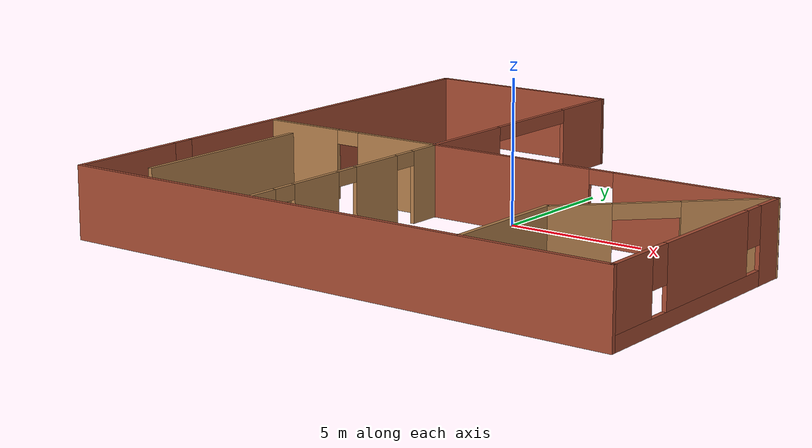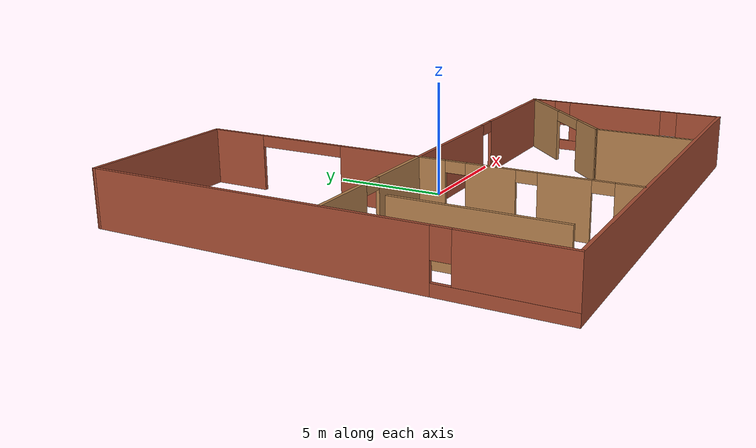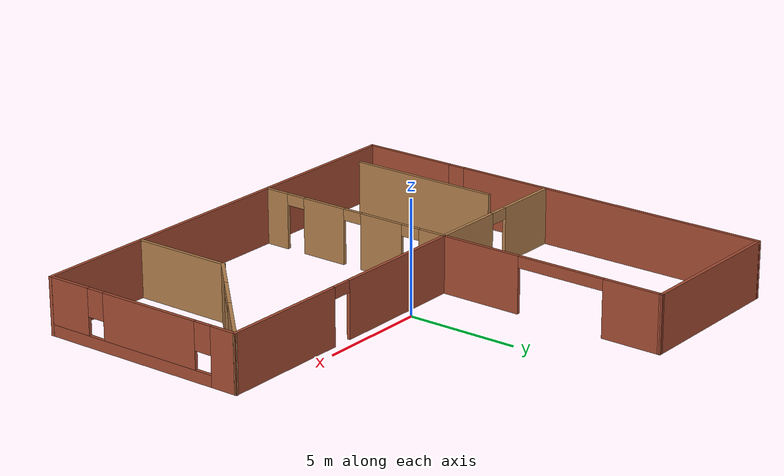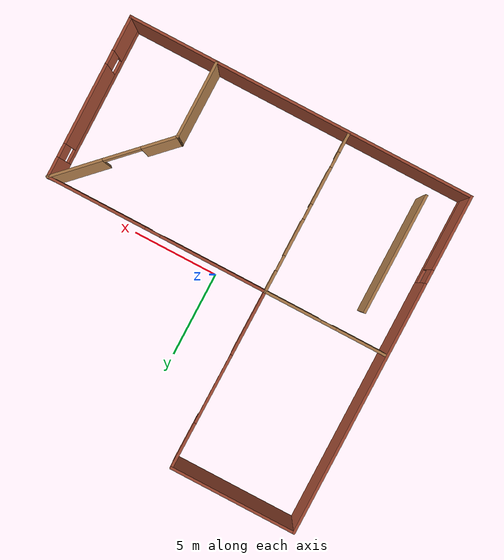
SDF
<?xml version='1.0'?>
<sdf version='1.7'>
  <model name='test_room'>
    <pose>0.008396 -0.010842 0 0 -0 0</pose>
    <link name='Wall_1'>
      <pose>-10.0852 -7e-06 0 0 -0 -1.5708</pose>
      <visual name='Wall_1_Visual_0'>
        <pose>-2.60084 0 1.25 0 -0 0</pose>
        <geometry>
          <box>
            <size>14.8266 0.15 2.5</size>
          </box>
        </geometry>
        <material>
          <script>
            <uri>file://media/materials/scripts/gazebo.material</uri>
            <name>Gazebo/Bricks</name>
          </script>
          <ambient>1 1 1 1</ambient>
        </material>
        <meta>
          <layer>0</layer>
        </meta>
      </visual>
      <collision name='Wall_1_Collision_0'>
        <geometry>
          <box>
            <size>14.8266 0.15 2.5</size>
          </box>
        </geometry>
        <pose>-2.60084 0 1.25 0 -0 0</pose>
      </collision>
      <visual name='Wall_1_Visual_1'>
        <pose>7.41331 0 0.25 0 -0 0</pose>
        <geometry>
          <box>
            <size>5.20167 0.15 0.5</size>
          </box>
        </geometry>
        <material>
          <script>
            <uri>file://media/materials/scripts/gazebo.material</uri>
            <name>Gazebo/Bricks</name>
          </script>
          <ambient>1 1 1 1</ambient>
        </material>
        <meta>
          <layer>0</layer>
        </meta>
      </visual>
      <collision name='Wall_1_Collision_1'>
        <geometry>
          <box>
            <size>5.20167 0.15 0.5</size>
          </box>
        </geometry>
        <pose>7.41331 0 0.25 0 -0 0</pose>
      </collision>
      <visual name='Wall_1_Visual_2'>
        <pose>7.81331 0 1.5 0 -0 0</pose>
        <geometry>
          <box>
            <size>4.40167 0.15 2</size>
          </box>
        </geometry>
        <material>
          <script>
            <uri>file://media/materials/scripts/gazebo.material</uri>
            <name>Gazebo/Bricks</name>
          </script>
          <ambient>1 1 1 1</ambient>
        </material>
        <meta>
          <layer>0</layer>
        </meta>
      </visual>
      <collision name='Wall_1_Collision_2'>
        <geometry>
          <box>
            <size>4.40167 0.15 2</size>
          </box>
        </geometry>
        <pose>7.81331 0 1.5 0 -0 0</pose>
      </collision>
      <visual name='Wall_1_Visual_3'>
        <pose>5.21248 0 1.9 0 -0 0</pose>
        <geometry>
          <box>
            <size>0.8 0.15 1.2</size>
          </box>
        </geometry>
        <material>
          <script>
            <uri>file://media/materials/scripts/gazebo.material</uri>
            <name>Gazebo/Bricks</name>
          </script>
          <ambient>1 1 1 1</ambient>
        </material>
        <meta>
          <layer>0</layer>
        </meta>
      </visual>
      <collision name='Wall_1_Collision_3'>
        <geometry>
          <box>
            <size>0.8 0.15 1.2</size>
          </box>
        </geometry>
        <pose>5.21248 0 1.9 0 -0 0</pose>
      </collision>
    </link>
    <link name='Wall_10'>
      <pose>10.0526 -5.21899 0 0 -0 -1.56433</pose>
      <visual name='Wall_10_Visual_0'>
        <pose>-4.1681 0 1.25 0 -0 0</pose>
        <geometry>
          <box>
            <size>1.23337 0.15 2.5</size>
          </box>
        </geometry>
        <material>
          <script>
            <uri>file://media/materials/scripts/gazebo.material</uri>
            <name>Gazebo/Bricks</name>
          </script>
          <ambient>1 1 1 1</ambient>
        </material>
        <meta>
          <layer>0</layer>
        </meta>
      </visual>
      <collision name='Wall_10_Collision_0'>
        <geometry>
          <box>
            <size>1.23337 0.15 2.5</size>
          </box>
        </geometry>
        <pose>-4.1681 0 1.25 0 -0 0</pose>
      </collision>
      <visual name='Wall_10_Visual_1'>
        <pose>0.616686 0 0.25 0 -0 0</pose>
        <geometry>
          <box>
            <size>8.3362 0.15 0.5</size>
          </box>
        </geometry>
        <material>
          <script>
            <uri>file://media/materials/scripts/gazebo.material</uri>
            <name>Gazebo/Bricks</name>
          </script>
          <ambient>1 1 1 1</ambient>
        </material>
        <meta>
          <layer>0</layer>
        </meta>
      </visual>
      <collision name='Wall_10_Collision_1'>
        <geometry>
          <box>
            <size>8.3362 0.15 0.5</size>
          </box>
        </geometry>
        <pose>0.616686 0 0.25 0 -0 0</pose>
      </collision>
      <visual name='Wall_10_Visual_2'>
        <pose>-0.410197 0 1.5 0 -0 0</pose>
        <geometry>
          <box>
            <size>4.68244 0.15 2</size>
          </box>
        </geometry>
        <material>
          <script>
            <uri>file://media/materials/scripts/gazebo.material</uri>
            <name>Gazebo/Bricks</name>
          </script>
          <ambient>1 1 1 1</ambient>
        </material>
        <meta>
          <layer>0</layer>
        </meta>
      </visual>
      <collision name='Wall_10_Collision_2'>
        <geometry>
          <box>
            <size>4.68244 0.15 2</size>
          </box>
        </geometry>
        <pose>-0.410197 0 1.5 0 -0 0</pose>
      </collision>
      <visual name='Wall_10_Visual_3'>
        <pose>3.75791 0 1.5 0 -0 0</pose>
        <geometry>
          <box>
            <size>2.05376 0.15 2</size>
          </box>
        </geometry>
        <material>
          <script>
            <uri>file://media/materials/scripts/gazebo.material</uri>
            <name>Gazebo/Bricks</name>
          </script>
          <ambient>1 1 1 1</ambient>
        </material>
        <meta>
          <layer>0</layer>
        </meta>
      </visual>
      <collision name='Wall_10_Collision_3'>
        <geometry>
          <box>
            <size>2.05376 0.15 2</size>
          </box>
        </geometry>
        <pose>3.75791 0 1.5 0 -0 0</pose>
      </collision>
      <visual name='Wall_10_Visual_4'>
        <pose>-3.15142 0 1.9 0 -0 0</pose>
        <geometry>
          <box>
            <size>0.8 0.15 1.2</size>
          </box>
        </geometry>
        <material>
          <script>
            <uri>file://media/materials/scripts/gazebo.material</uri>
            <name>Gazebo/Bricks</name>
          </script>
          <ambient>1 1 1 1</ambient>
        </material>
        <meta>
          <layer>0</layer>
        </meta>
      </visual>
      <collision name='Wall_10_Collision_4'>
        <geometry>
          <box>
            <size>0.8 0.15 1.2</size>
          </box>
        </geometry>
        <pose>-3.15142 0 1.9 0 -0 0</pose>
      </collision>
      <visual name='Wall_10_Visual_5'>
        <pose>2.33102 0 1.9 0 -0 0</pose>
        <geometry>
          <box>
            <size>0.8 0.15 1.2</size>
          </box>
        </geometry>
        <material>
          <script>
            <uri>file://media/materials/scripts/gazebo.material</uri>
            <name>Gazebo/Bricks</name>
          </script>
          <ambient>1 1 1 1</ambient>
        </material>
        <meta>
          <layer>0</layer>
        </meta>
      </visual>
      <collision name='Wall_10_Collision_5'>
        <geometry>
          <box>
            <size>0.8 0.15 1.2</size>
          </box>
        </geometry>
        <pose>2.33102 0 1.9 0 -0 0</pose>
      </collision>
    </link>
    <link name='Wall_12'>
      <collision name='Wall_12_Collision'>
        <geometry>
          <box>
            <size>7.41264 0.15 2.5</size>
          </box>
        </geometry>
        <pose>0 0 1.25 0 -0 0</pose>
      </collision>
      <visual name='Wall_12_Visual'>
        <pose>0 0 1.25 0 -0 0</pose>
        <geometry>
          <box>
            <size>7.41264 0.15 2.5</size>
          </box>
        </geometry>
        <material>
          <script>
            <uri>file://media/materials/scripts/gazebo.material</uri>
            <name>Gazebo/Bricks</name>
          </script>
          <ambient>1 1 1 1</ambient>
        </material>
        <meta>
          <layer>0</layer>
        </meta>
      </visual>
      <pose>-6.45385 9.93841 0 0 -0 -0.000203</pose>
    </link>
    <link name='Wall_16'>
      <pose>-6.41315 -0.507168 0 0 -0 3.14159</pose>
      <visual name='Wall_16_Visual_0'>
        <pose>-1.94676 0 1.25 0 -0 0</pose>
        <geometry>
          <box>
            <size>3.35648 0.15 2.5</size>
          </box>
        </geometry>
        <material>
          <script>
            <uri>file://media/materials/scripts/gazebo.material</uri>
            <name>Gazebo/Wood</name>
          </script>
          <ambient>1 1 1 1</ambient>
        </material>
        <meta>
          <layer>0</layer>
        </meta>
      </visual>
      <collision name='Wall_16_Collision_0'>
        <geometry>
          <box>
            <size>3.35648 0.15 2.5</size>
          </box>
        </geometry>
        <pose>-1.94676 0 1.25 0 -0 0</pose>
      </collision>
      <visual name='Wall_16_Visual_1'>
        <pose>2.12824 0 1.25 0 -0 0</pose>
        <geometry>
          <box>
            <size>2.99352 0.15 2.5</size>
          </box>
        </geometry>
        <material>
          <script>
            <uri>file://media/materials/scripts/gazebo.material</uri>
            <name>Gazebo/Wood</name>
          </script>
          <ambient>1 1 1 1</ambient>
        </material>
        <meta>
          <layer>0</layer>
        </meta>
      </visual>
      <collision name='Wall_16_Collision_1'>
        <geometry>
          <box>
            <size>2.99352 0.15 2.5</size>
          </box>
        </geometry>
        <pose>2.12824 0 1.25 0 -0 0</pose>
      </collision>
      <visual name='Wall_16_Visual_2'>
        <pose>0.181481 0 2.25 0 -0 0</pose>
        <geometry>
          <box>
            <size>0.9 0.15 0.5</size>
          </box>
        </geometry>
        <material>
          <script>
            <uri>file://media/materials/scripts/gazebo.material</uri>
            <name>Gazebo/Wood</name>
          </script>
          <ambient>1 1 1 1</ambient>
        </material>
        <meta>
          <layer>0</layer>
        </meta>
      </visual>
      <collision name='Wall_16_Collision_2'>
        <geometry>
          <box>
            <size>0.9 0.15 0.5</size>
          </box>
        </geometry>
        <pose>0.181481 0 2.25 0 -0 0</pose>
      </collision>
    </link>
    <link name='Wall_18'>
      <pose>-2.86315 -5.18217 0 0 -0 -1.5708</pose>
      <visual name='Wall_18_Visual_0'>
        <pose>-4.08833 0 1.25 0 -0 0</pose>
        <geometry>
          <box>
            <size>1.32334 0.15 2.5</size>
          </box>
        </geometry>
        <material>
          <script>
            <uri>file://media/materials/scripts/gazebo.material</uri>
            <name>Gazebo/Wood</name>
          </script>
          <ambient>1 1 1 1</ambient>
        </material>
        <meta>
          <layer>0</layer>
        </meta>
      </visual>
      <collision name='Wall_18_Collision_0'>
        <geometry>
          <box>
            <size>1.32334 0.15 2.5</size>
          </box>
        </geometry>
        <pose>-4.08833 0 1.25 0 -0 0</pose>
      </collision>
      <visual name='Wall_18_Visual_1'>
        <pose>-1.45004 0 1.25 0 -0 0</pose>
        <geometry>
          <box>
            <size>2.15324 0.15 2.5</size>
          </box>
        </geometry>
        <material>
          <script>
            <uri>file://media/materials/scripts/gazebo.material</uri>
            <name>Gazebo/Wood</name>
          </script>
          <ambient>1 1 1 1</ambient>
        </material>
        <meta>
          <layer>0</layer>
        </meta>
      </visual>
      <collision name='Wall_18_Collision_1'>
        <geometry>
          <box>
            <size>2.15324 0.15 2.5</size>
          </box>
        </geometry>
        <pose>-1.45004 0 1.25 0 -0 0</pose>
      </collision>
      <visual name='Wall_18_Visual_2'>
        <pose>1.60632 0 1.25 0 -0 0</pose>
        <geometry>
          <box>
            <size>2.15948 0.15 2.5</size>
          </box>
        </geometry>
        <material>
          <script>
            <uri>file://media/materials/scripts/gazebo.material</uri>
            <name>Gazebo/Wood</name>
          </script>
          <ambient>1 1 1 1</ambient>
        </material>
        <meta>
          <layer>0</layer>
        </meta>
      </visual>
      <collision name='Wall_18_Collision_2'>
        <geometry>
          <box>
            <size>2.15948 0.15 2.5</size>
          </box>
        </geometry>
        <pose>1.60632 0 1.25 0 -0 0</pose>
      </collision>
      <visual name='Wall_18_Visual_3'>
        <pose>4.16803 0 1.25 0 -0 0</pose>
        <geometry>
          <box>
            <size>1.16395 0.15 2.5</size>
          </box>
        </geometry>
        <material>
          <script>
            <uri>file://media/materials/scripts/gazebo.material</uri>
            <name>Gazebo/Wood</name>
          </script>
          <ambient>1 1 1 1</ambient>
        </material>
        <meta>
          <layer>0</layer>
        </meta>
      </visual>
      <collision name='Wall_18_Collision_3'>
        <geometry>
          <box>
            <size>1.16395 0.15 2.5</size>
          </box>
        </geometry>
        <pose>4.16803 0 1.25 0 -0 0</pose>
      </collision>
      <visual name='Wall_18_Visual_4'>
        <pose>-2.97666 0 2.25 0 -0 0</pose>
        <geometry>
          <box>
            <size>0.9 0.15 0.5</size>
          </box>
        </geometry>
        <material>
          <script>
            <uri>file://media/materials/scripts/gazebo.material</uri>
            <name>Gazebo/Wood</name>
          </script>
          <ambient>1 1 1 1</ambient>
        </material>
        <meta>
          <layer>0</layer>
        </meta>
      </visual>
      <collision name='Wall_18_Collision_4'>
        <geometry>
          <box>
            <size>0.9 0.15 0.5</size>
          </box>
        </geometry>
        <pose>-2.97666 0 2.25 0 -0 0</pose>
      </collision>
      <visual name='Wall_18_Visual_5'>
        <pose>0.076577 0 2.25 0 -0 0</pose>
        <geometry>
          <box>
            <size>0.9 0.15 0.5</size>
          </box>
        </geometry>
        <material>
          <script>
            <uri>file://media/materials/scripts/gazebo.material</uri>
            <name>Gazebo/Wood</name>
          </script>
          <ambient>1 1 1 1</ambient>
        </material>
        <meta>
          <layer>0</layer>
        </meta>
      </visual>
      <collision name='Wall_18_Collision_5'>
        <geometry>
          <box>
            <size>0.9 0.15 0.5</size>
          </box>
        </geometry>
        <pose>0.076577 0 2.25 0 -0 0</pose>
      </collision>
      <visual name='Wall_18_Visual_6'>
        <pose>3.13605 0 2.25 0 -0 0</pose>
        <geometry>
          <box>
            <size>0.9 0.15 0.5</size>
          </box>
        </geometry>
        <material>
          <script>
            <uri>file://media/materials/scripts/gazebo.material</uri>
            <name>Gazebo/Wood</name>
          </script>
          <ambient>1 1 1 1</ambient>
        </material>
        <meta>
          <layer>0</layer>
        </meta>
      </visual>
      <collision name='Wall_18_Collision_6'>
        <geometry>
          <box>
            <size>0.9 0.15 0.5</size>
          </box>
        </geometry>
        <pose>3.13605 0 2.25 0 -0 0</pose>
      </collision>
    </link>
    <link name='Wall_20'>
      <collision name='Wall_20_Collision'>
        <geometry>
          <box>
            <size>7 0.15 2.5</size>
          </box>
        </geometry>
        <pose>0 0 1.25 0 -0 0</pose>
      </collision>
      <visual name='Wall_20_Visual'>
        <pose>0 0 1.25 0 -0 0</pose>
        <geometry>
          <box>
            <size>7 0.15 2.5</size>
          </box>
        </geometry>
        <material>
          <script>
            <uri>file://media/materials/scripts/gazebo.material</uri>
            <name>Gazebo/Wood</name>
          </script>
          <ambient>1 1 1 1</ambient>
        </material>
        <meta>
          <layer>0</layer>
        </meta>
      </visual>
      <pose>-7.96917 -5.44423 0 0 -0 -1.5708</pose>
    </link>
    <link name='Wall_22'>
      <pose>7.51188 -3.01953 0 0 -0 -2.35619</pose>
      <visual name='Wall_22_Visual_0'>
        <pose>-2.09265 0 1.25 0 -0 0</pose>
        <geometry>
          <box>
            <size>3.06471 0.15 2.5</size>
          </box>
        </geometry>
        <material>
          <script>
            <uri>file://media/materials/scripts/gazebo.material</uri>
            <name>Gazebo/Wood</name>
          </script>
          <ambient>1 1 1 1</ambient>
        </material>
        <meta>
          <layer>0</layer>
        </meta>
      </visual>
      <collision name='Wall_22_Collision_0'>
        <geometry>
          <box>
            <size>3.06471 0.15 2.5</size>
          </box>
        </geometry>
        <pose>-2.09265 0 1.25 0 -0 0</pose>
      </collision>
      <visual name='Wall_22_Visual_1'>
        <pose>2.58752 0 1.25 0 -0 0</pose>
        <geometry>
          <box>
            <size>2.07496 0.15 2.5</size>
          </box>
        </geometry>
        <material>
          <script>
            <uri>file://media/materials/scripts/gazebo.material</uri>
            <name>Gazebo/Wood</name>
          </script>
          <ambient>1 1 1 1</ambient>
        </material>
        <meta>
          <layer>0</layer>
        </meta>
      </visual>
      <collision name='Wall_22_Collision_1'>
        <geometry>
          <box>
            <size>2.07496 0.15 2.5</size>
          </box>
        </geometry>
        <pose>2.58752 0 1.25 0 -0 0</pose>
      </collision>
      <visual name='Wall_22_Visual_2'>
        <pose>0.494874 0 2.25 0 -0 0</pose>
        <geometry>
          <box>
            <size>2.11033 0.15 0.5</size>
          </box>
        </geometry>
        <material>
          <script>
            <uri>file://media/materials/scripts/gazebo.material</uri>
            <name>Gazebo/Wood</name>
          </script>
          <ambient>1 1 1 1</ambient>
        </material>
        <meta>
          <layer>0</layer>
        </meta>
      </visual>
      <collision name='Wall_22_Collision_2'>
        <geometry>
          <box>
            <size>2.11033 0.15 0.5</size>
          </box>
        </geometry>
        <pose>0.494874 0 2.25 0 -0 0</pose>
      </collision>
    </link>
    <link name='Wall_23'>
      <collision name='Wall_23_Collision'>
        <geometry>
          <box>
            <size>4.5 0.15 2.5</size>
          </box>
        </geometry>
        <pose>0 0 1.25 0 -0 0</pose>
      </collision>
      <visual name='Wall_23_Visual'>
        <pose>0 0 1.25 0 -0 0</pose>
        <geometry>
          <box>
            <size>4.5 0.15 2.5</size>
          </box>
        </geometry>
        <material>
          <script>
            <uri>file://media/materials/scripts/gazebo.material</uri>
            <name>Gazebo/Wood</name>
          </script>
          <ambient>1 1 1 1</ambient>
        </material>
        <meta>
          <layer>0</layer>
        </meta>
      </visual>
      <pose>5.00165 -7.70476 0 0 -0 -1.5708</pose>
    </link>
    <link name='Wall_3'>
      <collision name='Wall_3_Collision'>
        <geometry>
          <box>
            <size>20.3204 0.15 2.5</size>
          </box>
        </geometry>
        <pose>0 0 1.25 0 -0 0</pose>
      </collision>
      <visual name='Wall_3_Visual'>
        <pose>0 0 1.25 0 -0 0</pose>
        <geometry>
          <box>
            <size>20.3204 0.15 2.5</size>
          </box>
        </geometry>
        <material>
          <script>
            <uri>file://media/materials/scripts/gazebo.material</uri>
            <name>Gazebo/Bricks</name>
          </script>
          <ambient>1 1 1 1</ambient>
        </material>
        <meta>
          <layer>0</layer>
        </meta>
      </visual>
      <pose>8e-06 -9.93916 0 0 -0 0</pose>
    </link>
    <link name='Wall_7'>
      <pose>-2.84231 4.71525 0 0 -0 -1.57458</pose>
      <visual name='Wall_7_Visual_0'>
        <pose>-3.92845 0 1.25 0 -0 0</pose>
        <geometry>
          <box>
            <size>2.73806 0.15 2.5</size>
          </box>
        </geometry>
        <material>
          <script>
            <uri>file://media/materials/scripts/gazebo.material</uri>
            <name>Gazebo/Bricks</name>
          </script>
          <ambient>1 1 1 1</ambient>
        </material>
        <meta>
          <layer>0</layer>
        </meta>
      </visual>
      <collision name='Wall_7_Collision_0'>
        <geometry>
          <box>
            <size>2.73806 0.15 2.5</size>
          </box>
        </geometry>
        <pose>-3.92845 0 1.25 0 -0 0</pose>
      </collision>
      <visual name='Wall_7_Visual_1'>
        <pose>3.38844 0 1.25 0 -0 0</pose>
        <geometry>
          <box>
            <size>3.81807 0.15 2.5</size>
          </box>
        </geometry>
        <material>
          <script>
            <uri>file://media/materials/scripts/gazebo.material</uri>
            <name>Gazebo/Bricks</name>
          </script>
          <ambient>1 1 1 1</ambient>
        </material>
        <meta>
          <layer>0</layer>
        </meta>
      </visual>
      <collision name='Wall_7_Collision_1'>
        <geometry>
          <box>
            <size>3.81807 0.15 2.5</size>
          </box>
        </geometry>
        <pose>3.38844 0 1.25 0 -0 0</pose>
      </collision>
      <visual name='Wall_7_Visual_2'>
        <pose>-0.540004 0 2.25 0 -0 0</pose>
        <geometry>
          <box>
            <size>4.03882 0.15 0.5</size>
          </box>
        </geometry>
        <material>
          <script>
            <uri>file://media/materials/scripts/gazebo.material</uri>
            <name>Gazebo/Bricks</name>
          </script>
          <ambient>1 1 1 1</ambient>
        </material>
        <meta>
          <layer>0</layer>
        </meta>
      </visual>
      <collision name='Wall_7_Collision_2'>
        <geometry>
          <box>
            <size>4.03882 0.15 0.5</size>
          </box>
        </geometry>
        <pose>-0.540004 0 2.25 0 -0 0</pose>
      </collision>
    </link>
    <link name='Wall_8'>
      <pose>3.58001 -0.508237 0 0 -0 -0.000166</pose>
      <visual name='Wall_8_Visual_0'>
        <pose>-3.36964 0 1.25 0 -0 0</pose>
        <geometry>
          <box>
            <size>6.29492 0.15 2.5</size>
          </box>
        </geometry>
        <material>
          <script>
            <uri>file://media/materials/scripts/gazebo.material</uri>
            <name>Gazebo/Bricks</name>
          </script>
          <ambient>1 1 1 1</ambient>
        </material>
        <meta>
          <layer>0</layer>
        </meta>
      </visual>
      <collision name='Wall_8_Collision_0'>
        <geometry>
          <box>
            <size>6.29492 0.15 2.5</size>
          </box>
        </geometry>
        <pose>-3.36964 0 1.25 0 -0 0</pose>
      </collision>
      <visual name='Wall_8_Visual_1'>
        <pose>3.59746 0 1.25 0 -0 0</pose>
        <geometry>
          <box>
            <size>5.83927 0.15 2.5</size>
          </box>
        </geometry>
        <material>
          <script>
            <uri>file://media/materials/scripts/gazebo.material</uri>
            <name>Gazebo/Bricks</name>
          </script>
          <ambient>1 1 1 1</ambient>
        </material>
        <meta>
          <layer>0</layer>
        </meta>
      </visual>
      <collision name='Wall_8_Collision_1'>
        <geometry>
          <box>
            <size>5.83927 0.15 2.5</size>
          </box>
        </geometry>
        <pose>3.59746 0 1.25 0 -0 0</pose>
      </collision>
      <visual name='Wall_8_Visual_2'>
        <pose>0.227824 0 2.25 0 -0 0</pose>
        <geometry>
          <box>
            <size>0.9 0.15 0.5</size>
          </box>
        </geometry>
        <material>
          <script>
            <uri>file://media/materials/scripts/gazebo.material</uri>
            <name>Gazebo/Bricks</name>
          </script>
          <ambient>1 1 1 1</ambient>
        </material>
        <meta>
          <layer>0</layer>
        </meta>
      </visual>
      <collision name='Wall_8_Collision_2'>
        <geometry>
          <box>
            <size>0.9 0.15 0.5</size>
          </box>
        </geometry>
        <pose>0.227824 0 2.25 0 -0 0</pose>
      </collision>
    </link>
    <static>1</static>
  </model>
</sdf>
